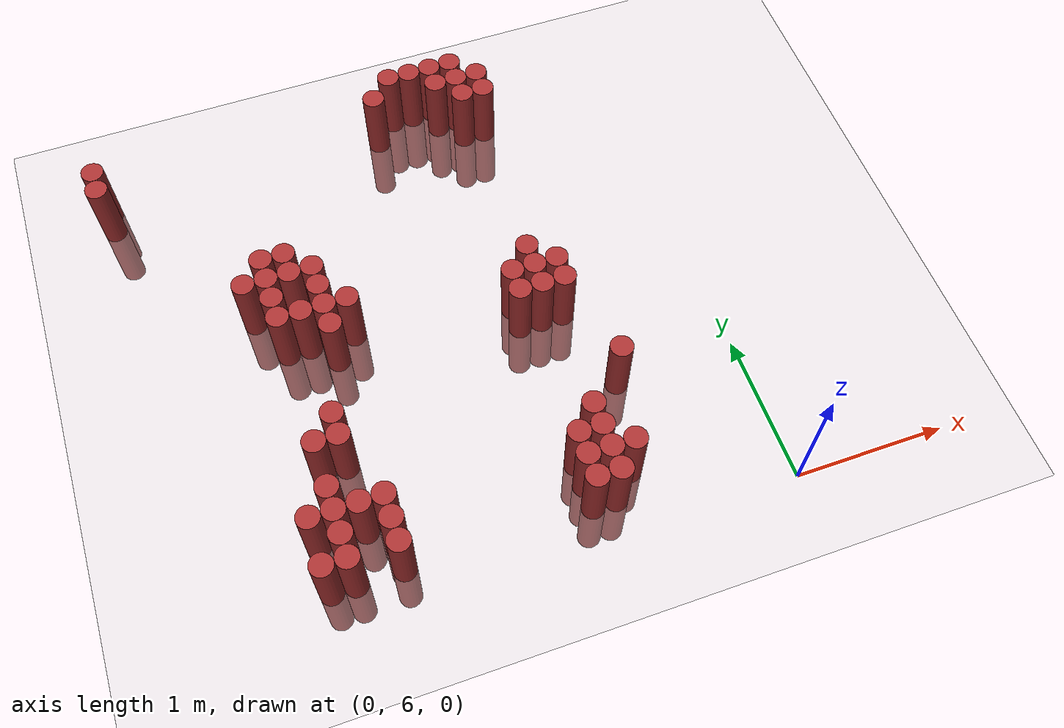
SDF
<sdf version="1.6">
 <world name="default">
  <model name="ground_plane">
   <static>1</static>
   <link name="link">
    <collision name="collision">
     <geometry><plane><normal>0 0 1</normal><size>100 100</size></plane></geometry>
     <surface><friction><ode><mu>100</mu><mu2>50</mu2></ode></friction></surface>
    </collision>
    <visual name="visual">
     <cast_shadows>0</cast_shadows>
     <geometry><plane><normal>0 0 1</normal><size>100 100</size></plane></geometry>
     <material>
      <script><uri>file://media/materials/scripts/gazebo.material</uri><name>Gazebo/Grey</name></script>
     </material>
    </visual>
   </link>
  </model>
  <model name="unit_cylinder_174">
   <static>1</static>
   <pose>-3.675000 9.225000 0.000000 0.000000 0.000000 0.000000</pose>
   <link name="link">
    <inertial>
     <mass>1</mass>
     <inertia><ixx>0.145833</ixx><ixy>0</ixy><ixz>0</ixz><iyy>0.145833</iyy><iyz>0</iyz><izz>0.125</izz></inertia>
    </inertial>
    <collision name="collision">
     <geometry><cylinder><radius>0.075000</radius><length>1</length></cylinder></geometry>
    </collision>
    <visual name="visual">
     <geometry><cylinder><radius>0.075000</radius><length>1</length></cylinder></geometry>
     <material>
      <ambient>0.648000 0.192000 0.192000 1</ambient>
      <diffuse>0.648000 0.192000 0.192000 1</diffuse>
     </material>
     <material>
      <script><name>Gazebo/Grey</name><uri>file://media/materials/scripts/gazebo.material</uri></script>
     </material>
    </visual>
   </link>
  </model>
  <model name="unit_cylinder_175">
   <static>1</static>
   <pose>-3.675000 9.375000 0.000000 0.000000 0.000000 0.000000</pose>
   <link name="link">
    <inertial>
     <mass>1</mass>
     <inertia><ixx>0.145833</ixx><ixy>0</ixy><ixz>0</ixz><iyy>0.145833</iyy><iyz>0</iyz><izz>0.125</izz></inertia>
    </inertial>
    <collision name="collision">
     <geometry><cylinder><radius>0.075000</radius><length>1</length></cylinder></geometry>
    </collision>
    <visual name="visual">
     <geometry><cylinder><radius>0.075000</radius><length>1</length></cylinder></geometry>
     <material>
      <ambient>0.648000 0.192000 0.192000 1</ambient>
      <diffuse>0.648000 0.192000 0.192000 1</diffuse>
     </material>
     <material>
      <script><name>Gazebo/Grey</name><uri>file://media/materials/scripts/gazebo.material</uri></script>
     </material>
    </visual>
   </link>
  </model>
  <model name="unit_cylinder_184">
   <static>1</static>
   <pose>-2.925000 6.225000 0.000000 0.000000 0.000000 0.000000</pose>
   <link name="link">
    <inertial>
     <mass>1</mass>
     <inertia><ixx>0.145833</ixx><ixy>0</ixy><ixz>0</ixz><iyy>0.145833</iyy><iyz>0</iyz><izz>0.125</izz></inertia>
    </inertial>
    <collision name="collision">
     <geometry><cylinder><radius>0.075000</radius><length>1</length></cylinder></geometry>
    </collision>
    <visual name="visual">
     <geometry><cylinder><radius>0.075000</radius><length>1</length></cylinder></geometry>
     <material>
      <ambient>0.648000 0.192000 0.192000 1</ambient>
      <diffuse>0.648000 0.192000 0.192000 1</diffuse>
     </material>
     <material>
      <script><name>Gazebo/Grey</name><uri>file://media/materials/scripts/gazebo.material</uri></script>
     </material>
    </visual>
   </link>
  </model>
  <model name="unit_cylinder_185">
   <static>1</static>
   <pose>-2.925000 6.525000 0.000000 0.000000 0.000000 0.000000</pose>
   <link name="link">
    <inertial>
     <mass>1</mass>
     <inertia><ixx>0.145833</ixx><ixy>0</ixy><ixz>0</ixz><iyy>0.145833</iyy><iyz>0</iyz><izz>0.125</izz></inertia>
    </inertial>
    <collision name="collision">
     <geometry><cylinder><radius>0.075000</radius><length>1</length></cylinder></geometry>
    </collision>
    <visual name="visual">
     <geometry><cylinder><radius>0.075000</radius><length>1</length></cylinder></geometry>
     <material>
      <ambient>0.648000 0.192000 0.192000 1</ambient>
      <diffuse>0.648000 0.192000 0.192000 1</diffuse>
     </material>
     <material>
      <script><name>Gazebo/Grey</name><uri>file://media/materials/scripts/gazebo.material</uri></script>
     </material>
    </visual>
   </link>
  </model>
  <model name="unit_cylinder_186">
   <static>1</static>
   <pose>-2.925000 8.175000 0.000000 0.000000 0.000000 0.000000</pose>
   <link name="link">
    <inertial>
     <mass>1</mass>
     <inertia><ixx>0.145833</ixx><ixy>0</ixy><ixz>0</ixz><iyy>0.145833</iyy><iyz>0</iyz><izz>0.125</izz></inertia>
    </inertial>
    <collision name="collision">
     <geometry><cylinder><radius>0.075000</radius><length>1</length></cylinder></geometry>
    </collision>
    <visual name="visual">
     <geometry><cylinder><radius>0.075000</radius><length>1</length></cylinder></geometry>
     <material>
      <ambient>0.648000 0.192000 0.192000 1</ambient>
      <diffuse>0.648000 0.192000 0.192000 1</diffuse>
     </material>
     <material>
      <script><name>Gazebo/Grey</name><uri>file://media/materials/scripts/gazebo.material</uri></script>
     </material>
    </visual>
   </link>
  </model>
  <model name="unit_cylinder_190">
   <static>1</static>
   <pose>-2.775000 6.225000 0.000000 0.000000 0.000000 0.000000</pose>
   <link name="link">
    <inertial>
     <mass>1</mass>
     <inertia><ixx>0.145833</ixx><ixy>0</ixy><ixz>0</ixz><iyy>0.145833</iyy><iyz>0</iyz><izz>0.125</izz></inertia>
    </inertial>
    <collision name="collision">
     <geometry><cylinder><radius>0.075000</radius><length>1</length></cylinder></geometry>
    </collision>
    <visual name="visual">
     <geometry><cylinder><radius>0.075000</radius><length>1</length></cylinder></geometry>
     <material>
      <ambient>0.648000 0.192000 0.192000 1</ambient>
      <diffuse>0.648000 0.192000 0.192000 1</diffuse>
     </material>
     <material>
      <script><name>Gazebo/Grey</name><uri>file://media/materials/scripts/gazebo.material</uri></script>
     </material>
    </visual>
   </link>
  </model>
  <model name="unit_cylinder_191">
   <static>1</static>
   <pose>-2.775000 6.375000 0.000000 0.000000 0.000000 0.000000</pose>
   <link name="link">
    <inertial>
     <mass>1</mass>
     <inertia><ixx>0.145833</ixx><ixy>0</ixy><ixz>0</ixz><iyy>0.145833</iyy><iyz>0</iyz><izz>0.125</izz></inertia>
    </inertial>
    <collision name="collision">
     <geometry><cylinder><radius>0.075000</radius><length>1</length></cylinder></geometry>
    </collision>
    <visual name="visual">
     <geometry><cylinder><radius>0.075000</radius><length>1</length></cylinder></geometry>
     <material>
      <ambient>0.648000 0.192000 0.192000 1</ambient>
      <diffuse>0.648000 0.192000 0.192000 1</diffuse>
     </material>
     <material>
      <script><name>Gazebo/Grey</name><uri>file://media/materials/scripts/gazebo.material</uri></script>
     </material>
    </visual>
   </link>
  </model>
  <model name="unit_cylinder_192">
   <static>1</static>
   <pose>-2.775000 6.525000 0.000000 0.000000 0.000000 0.000000</pose>
   <link name="link">
    <inertial>
     <mass>1</mass>
     <inertia><ixx>0.145833</ixx><ixy>0</ixy><ixz>0</ixz><iyy>0.145833</iyy><iyz>0</iyz><izz>0.125</izz></inertia>
    </inertial>
    <collision name="collision">
     <geometry><cylinder><radius>0.075000</radius><length>1</length></cylinder></geometry>
    </collision>
    <visual name="visual">
     <geometry><cylinder><radius>0.075000</radius><length>1</length></cylinder></geometry>
     <material>
      <ambient>0.648000 0.192000 0.192000 1</ambient>
      <diffuse>0.648000 0.192000 0.192000 1</diffuse>
     </material>
     <material>
      <script><name>Gazebo/Grey</name><uri>file://media/materials/scripts/gazebo.material</uri></script>
     </material>
    </visual>
   </link>
  </model>
  <model name="unit_cylinder_193">
   <static>1</static>
   <pose>-2.775000 6.675000 0.000000 0.000000 0.000000 0.000000</pose>
   <link name="link">
    <inertial>
     <mass>1</mass>
     <inertia><ixx>0.145833</ixx><ixy>0</ixy><ixz>0</ixz><iyy>0.145833</iyy><iyz>0</iyz><izz>0.125</izz></inertia>
    </inertial>
    <collision name="collision">
     <geometry><cylinder><radius>0.075000</radius><length>1</length></cylinder></geometry>
    </collision>
    <visual name="visual">
     <geometry><cylinder><radius>0.075000</radius><length>1</length></cylinder></geometry>
     <material>
      <ambient>0.648000 0.192000 0.192000 1</ambient>
      <diffuse>0.648000 0.192000 0.192000 1</diffuse>
     </material>
     <material>
      <script><name>Gazebo/Grey</name><uri>file://media/materials/scripts/gazebo.material</uri></script>
     </material>
    </visual>
   </link>
  </model>
  <model name="unit_cylinder_194">
   <static>1</static>
   <pose>-2.775000 6.975000 0.000000 0.000000 0.000000 0.000000</pose>
   <link name="link">
    <inertial>
     <mass>1</mass>
     <inertia><ixx>0.145833</ixx><ixy>0</ixy><ixz>0</ixz><iyy>0.145833</iyy><iyz>0</iyz><izz>0.125</izz></inertia>
    </inertial>
    <collision name="collision">
     <geometry><cylinder><radius>0.075000</radius><length>1</length></cylinder></geometry>
    </collision>
    <visual name="visual">
     <geometry><cylinder><radius>0.075000</radius><length>1</length></cylinder></geometry>
     <material>
      <ambient>0.648000 0.192000 0.192000 1</ambient>
      <diffuse>0.648000 0.192000 0.192000 1</diffuse>
     </material>
     <material>
      <script><name>Gazebo/Grey</name><uri>file://media/materials/scripts/gazebo.material</uri></script>
     </material>
    </visual>
   </link>
  </model>
  <model name="unit_cylinder_195">
   <static>1</static>
   <pose>-2.775000 7.875000 0.000000 0.000000 0.000000 0.000000</pose>
   <link name="link">
    <inertial>
     <mass>1</mass>
     <inertia><ixx>0.145833</ixx><ixy>0</ixy><ixz>0</ixz><iyy>0.145833</iyy><iyz>0</iyz><izz>0.125</izz></inertia>
    </inertial>
    <collision name="collision">
     <geometry><cylinder><radius>0.075000</radius><length>1</length></cylinder></geometry>
    </collision>
    <visual name="visual">
     <geometry><cylinder><radius>0.075000</radius><length>1</length></cylinder></geometry>
     <material>
      <ambient>0.648000 0.192000 0.192000 1</ambient>
      <diffuse>0.648000 0.192000 0.192000 1</diffuse>
     </material>
     <material>
      <script><name>Gazebo/Grey</name><uri>file://media/materials/scripts/gazebo.material</uri></script>
     </material>
    </visual>
   </link>
  </model>
  <model name="unit_cylinder_196">
   <static>1</static>
   <pose>-2.775000 8.025000 0.000000 0.000000 0.000000 0.000000</pose>
   <link name="link">
    <inertial>
     <mass>1</mass>
     <inertia><ixx>0.145833</ixx><ixy>0</ixy><ixz>0</ixz><iyy>0.145833</iyy><iyz>0</iyz><izz>0.125</izz></inertia>
    </inertial>
    <collision name="collision">
     <geometry><cylinder><radius>0.075000</radius><length>1</length></cylinder></geometry>
    </collision>
    <visual name="visual">
     <geometry><cylinder><radius>0.075000</radius><length>1</length></cylinder></geometry>
     <material>
      <ambient>0.648000 0.192000 0.192000 1</ambient>
      <diffuse>0.648000 0.192000 0.192000 1</diffuse>
     </material>
     <material>
      <script><name>Gazebo/Grey</name><uri>file://media/materials/scripts/gazebo.material</uri></script>
     </material>
    </visual>
   </link>
  </model>
  <model name="unit_cylinder_197">
   <static>1</static>
   <pose>-2.775000 8.175000 0.000000 0.000000 0.000000 0.000000</pose>
   <link name="link">
    <inertial>
     <mass>1</mass>
     <inertia><ixx>0.145833</ixx><ixy>0</ixy><ixz>0</ixz><iyy>0.145833</iyy><iyz>0</iyz><izz>0.125</izz></inertia>
    </inertial>
    <collision name="collision">
     <geometry><cylinder><radius>0.075000</radius><length>1</length></cylinder></geometry>
    </collision>
    <visual name="visual">
     <geometry><cylinder><radius>0.075000</radius><length>1</length></cylinder></geometry>
     <material>
      <ambient>0.648000 0.192000 0.192000 1</ambient>
      <diffuse>0.648000 0.192000 0.192000 1</diffuse>
     </material>
     <material>
      <script><name>Gazebo/Grey</name><uri>file://media/materials/scripts/gazebo.material</uri></script>
     </material>
    </visual>
   </link>
  </model>
  <model name="unit_cylinder_198">
   <static>1</static>
   <pose>-2.775000 8.325000 0.000000 0.000000 0.000000 0.000000</pose>
   <link name="link">
    <inertial>
     <mass>1</mass>
     <inertia><ixx>0.145833</ixx><ixy>0</ixy><ixz>0</ixz><iyy>0.145833</iyy><iyz>0</iyz><izz>0.125</izz></inertia>
    </inertial>
    <collision name="collision">
     <geometry><cylinder><radius>0.075000</radius><length>1</length></cylinder></geometry>
    </collision>
    <visual name="visual">
     <geometry><cylinder><radius>0.075000</radius><length>1</length></cylinder></geometry>
     <material>
      <ambient>0.648000 0.192000 0.192000 1</ambient>
      <diffuse>0.648000 0.192000 0.192000 1</diffuse>
     </material>
     <material>
      <script><name>Gazebo/Grey</name><uri>file://media/materials/scripts/gazebo.material</uri></script>
     </material>
    </visual>
   </link>
  </model>
  <model name="unit_cylinder_203">
   <static>1</static>
   <pose>-2.625000 6.525000 0.000000 0.000000 0.000000 0.000000</pose>
   <link name="link">
    <inertial>
     <mass>1</mass>
     <inertia><ixx>0.145833</ixx><ixy>0</ixy><ixz>0</ixz><iyy>0.145833</iyy><iyz>0</iyz><izz>0.125</izz></inertia>
    </inertial>
    <collision name="collision">
     <geometry><cylinder><radius>0.075000</radius><length>1</length></cylinder></geometry>
    </collision>
    <visual name="visual">
     <geometry><cylinder><radius>0.075000</radius><length>1</length></cylinder></geometry>
     <material>
      <ambient>0.648000 0.192000 0.192000 1</ambient>
      <diffuse>0.648000 0.192000 0.192000 1</diffuse>
     </material>
     <material>
      <script><name>Gazebo/Grey</name><uri>file://media/materials/scripts/gazebo.material</uri></script>
     </material>
    </visual>
   </link>
  </model>
  <model name="unit_cylinder_204">
   <static>1</static>
   <pose>-2.625000 6.975000 0.000000 0.000000 0.000000 0.000000</pose>
   <link name="link">
    <inertial>
     <mass>1</mass>
     <inertia><ixx>0.145833</ixx><ixy>0</ixy><ixz>0</ixz><iyy>0.145833</iyy><iyz>0</iyz><izz>0.125</izz></inertia>
    </inertial>
    <collision name="collision">
     <geometry><cylinder><radius>0.075000</radius><length>1</length></cylinder></geometry>
    </collision>
    <visual name="visual">
     <geometry><cylinder><radius>0.075000</radius><length>1</length></cylinder></geometry>
     <material>
      <ambient>0.648000 0.192000 0.192000 1</ambient>
      <diffuse>0.648000 0.192000 0.192000 1</diffuse>
     </material>
     <material>
      <script><name>Gazebo/Grey</name><uri>file://media/materials/scripts/gazebo.material</uri></script>
     </material>
    </visual>
   </link>
  </model>
  <model name="unit_cylinder_205">
   <static>1</static>
   <pose>-2.625000 7.125000 0.000000 0.000000 0.000000 0.000000</pose>
   <link name="link">
    <inertial>
     <mass>1</mass>
     <inertia><ixx>0.145833</ixx><ixy>0</ixy><ixz>0</ixz><iyy>0.145833</iyy><iyz>0</iyz><izz>0.125</izz></inertia>
    </inertial>
    <collision name="collision">
     <geometry><cylinder><radius>0.075000</radius><length>1</length></cylinder></geometry>
    </collision>
    <visual name="visual">
     <geometry><cylinder><radius>0.075000</radius><length>1</length></cylinder></geometry>
     <material>
      <ambient>0.648000 0.192000 0.192000 1</ambient>
      <diffuse>0.648000 0.192000 0.192000 1</diffuse>
     </material>
     <material>
      <script><name>Gazebo/Grey</name><uri>file://media/materials/scripts/gazebo.material</uri></script>
     </material>
    </visual>
   </link>
  </model>
  <model name="unit_cylinder_206">
   <static>1</static>
   <pose>-2.625000 7.875000 0.000000 0.000000 0.000000 0.000000</pose>
   <link name="link">
    <inertial>
     <mass>1</mass>
     <inertia><ixx>0.145833</ixx><ixy>0</ixy><ixz>0</ixz><iyy>0.145833</iyy><iyz>0</iyz><izz>0.125</izz></inertia>
    </inertial>
    <collision name="collision">
     <geometry><cylinder><radius>0.075000</radius><length>1</length></cylinder></geometry>
    </collision>
    <visual name="visual">
     <geometry><cylinder><radius>0.075000</radius><length>1</length></cylinder></geometry>
     <material>
      <ambient>0.648000 0.192000 0.192000 1</ambient>
      <diffuse>0.648000 0.192000 0.192000 1</diffuse>
     </material>
     <material>
      <script><name>Gazebo/Grey</name><uri>file://media/materials/scripts/gazebo.material</uri></script>
     </material>
    </visual>
   </link>
  </model>
  <model name="unit_cylinder_207">
   <static>1</static>
   <pose>-2.625000 8.175000 0.000000 0.000000 0.000000 0.000000</pose>
   <link name="link">
    <inertial>
     <mass>1</mass>
     <inertia><ixx>0.145833</ixx><ixy>0</ixy><ixz>0</ixz><iyy>0.145833</iyy><iyz>0</iyz><izz>0.125</izz></inertia>
    </inertial>
    <collision name="collision">
     <geometry><cylinder><radius>0.075000</radius><length>1</length></cylinder></geometry>
    </collision>
    <visual name="visual">
     <geometry><cylinder><radius>0.075000</radius><length>1</length></cylinder></geometry>
     <material>
      <ambient>0.648000 0.192000 0.192000 1</ambient>
      <diffuse>0.648000 0.192000 0.192000 1</diffuse>
     </material>
     <material>
      <script><name>Gazebo/Grey</name><uri>file://media/materials/scripts/gazebo.material</uri></script>
     </material>
    </visual>
   </link>
  </model>
  <model name="unit_cylinder_208">
   <static>1</static>
   <pose>-2.625000 8.325000 0.000000 0.000000 0.000000 0.000000</pose>
   <link name="link">
    <inertial>
     <mass>1</mass>
     <inertia><ixx>0.145833</ixx><ixy>0</ixy><ixz>0</ixz><iyy>0.145833</iyy><iyz>0</iyz><izz>0.125</izz></inertia>
    </inertial>
    <collision name="collision">
     <geometry><cylinder><radius>0.075000</radius><length>1</length></cylinder></geometry>
    </collision>
    <visual name="visual">
     <geometry><cylinder><radius>0.075000</radius><length>1</length></cylinder></geometry>
     <material>
      <ambient>0.648000 0.192000 0.192000 1</ambient>
      <diffuse>0.648000 0.192000 0.192000 1</diffuse>
     </material>
     <material>
      <script><name>Gazebo/Grey</name><uri>file://media/materials/scripts/gazebo.material</uri></script>
     </material>
    </visual>
   </link>
  </model>
  <model name="unit_cylinder_213">
   <static>1</static>
   <pose>-2.475000 6.225000 0.000000 0.000000 0.000000 0.000000</pose>
   <link name="link">
    <inertial>
     <mass>1</mass>
     <inertia><ixx>0.145833</ixx><ixy>0</ixy><ixz>0</ixz><iyy>0.145833</iyy><iyz>0</iyz><izz>0.125</izz></inertia>
    </inertial>
    <collision name="collision">
     <geometry><cylinder><radius>0.075000</radius><length>1</length></cylinder></geometry>
    </collision>
    <visual name="visual">
     <geometry><cylinder><radius>0.075000</radius><length>1</length></cylinder></geometry>
     <material>
      <ambient>0.648000 0.192000 0.192000 1</ambient>
      <diffuse>0.648000 0.192000 0.192000 1</diffuse>
     </material>
     <material>
      <script><name>Gazebo/Grey</name><uri>file://media/materials/scripts/gazebo.material</uri></script>
     </material>
    </visual>
   </link>
  </model>
  <model name="unit_cylinder_214">
   <static>1</static>
   <pose>-2.475000 6.375000 0.000000 0.000000 0.000000 0.000000</pose>
   <link name="link">
    <inertial>
     <mass>1</mass>
     <inertia><ixx>0.145833</ixx><ixy>0</ixy><ixz>0</ixz><iyy>0.145833</iyy><iyz>0</iyz><izz>0.125</izz></inertia>
    </inertial>
    <collision name="collision">
     <geometry><cylinder><radius>0.075000</radius><length>1</length></cylinder></geometry>
    </collision>
    <visual name="visual">
     <geometry><cylinder><radius>0.075000</radius><length>1</length></cylinder></geometry>
     <material>
      <ambient>0.648000 0.192000 0.192000 1</ambient>
      <diffuse>0.648000 0.192000 0.192000 1</diffuse>
     </material>
     <material>
      <script><name>Gazebo/Grey</name><uri>file://media/materials/scripts/gazebo.material</uri></script>
     </material>
    </visual>
   </link>
  </model>
  <model name="unit_cylinder_215">
   <static>1</static>
   <pose>-2.475000 6.525000 0.000000 0.000000 0.000000 0.000000</pose>
   <link name="link">
    <inertial>
     <mass>1</mass>
     <inertia><ixx>0.145833</ixx><ixy>0</ixy><ixz>0</ixz><iyy>0.145833</iyy><iyz>0</iyz><izz>0.125</izz></inertia>
    </inertial>
    <collision name="collision">
     <geometry><cylinder><radius>0.075000</radius><length>1</length></cylinder></geometry>
    </collision>
    <visual name="visual">
     <geometry><cylinder><radius>0.075000</radius><length>1</length></cylinder></geometry>
     <material>
      <ambient>0.648000 0.192000 0.192000 1</ambient>
      <diffuse>0.648000 0.192000 0.192000 1</diffuse>
     </material>
     <material>
      <script><name>Gazebo/Grey</name><uri>file://media/materials/scripts/gazebo.material</uri></script>
     </material>
    </visual>
   </link>
  </model>
  <model name="unit_cylinder_216">
   <static>1</static>
   <pose>-2.475000 7.725000 0.000000 0.000000 0.000000 0.000000</pose>
   <link name="link">
    <inertial>
     <mass>1</mass>
     <inertia><ixx>0.145833</ixx><ixy>0</ixy><ixz>0</ixz><iyy>0.145833</iyy><iyz>0</iyz><izz>0.125</izz></inertia>
    </inertial>
    <collision name="collision">
     <geometry><cylinder><radius>0.075000</radius><length>1</length></cylinder></geometry>
    </collision>
    <visual name="visual">
     <geometry><cylinder><radius>0.075000</radius><length>1</length></cylinder></geometry>
     <material>
      <ambient>0.648000 0.192000 0.192000 1</ambient>
      <diffuse>0.648000 0.192000 0.192000 1</diffuse>
     </material>
     <material>
      <script><name>Gazebo/Grey</name><uri>file://media/materials/scripts/gazebo.material</uri></script>
     </material>
    </visual>
   </link>
  </model>
  <model name="unit_cylinder_217">
   <static>1</static>
   <pose>-2.475000 7.875000 0.000000 0.000000 0.000000 0.000000</pose>
   <link name="link">
    <inertial>
     <mass>1</mass>
     <inertia><ixx>0.145833</ixx><ixy>0</ixy><ixz>0</ixz><iyy>0.145833</iyy><iyz>0</iyz><izz>0.125</izz></inertia>
    </inertial>
    <collision name="collision">
     <geometry><cylinder><radius>0.075000</radius><length>1</length></cylinder></geometry>
    </collision>
    <visual name="visual">
     <geometry><cylinder><radius>0.075000</radius><length>1</length></cylinder></geometry>
     <material>
      <ambient>0.648000 0.192000 0.192000 1</ambient>
      <diffuse>0.648000 0.192000 0.192000 1</diffuse>
     </material>
     <material>
      <script><name>Gazebo/Grey</name><uri>file://media/materials/scripts/gazebo.material</uri></script>
     </material>
    </visual>
   </link>
  </model>
  <model name="unit_cylinder_218">
   <static>1</static>
   <pose>-2.475000 8.025000 0.000000 0.000000 0.000000 0.000000</pose>
   <link name="link">
    <inertial>
     <mass>1</mass>
     <inertia><ixx>0.145833</ixx><ixy>0</ixy><ixz>0</ixz><iyy>0.145833</iyy><iyz>0</iyz><izz>0.125</izz></inertia>
    </inertial>
    <collision name="collision">
     <geometry><cylinder><radius>0.075000</radius><length>1</length></cylinder></geometry>
    </collision>
    <visual name="visual">
     <geometry><cylinder><radius>0.075000</radius><length>1</length></cylinder></geometry>
     <material>
      <ambient>0.648000 0.192000 0.192000 1</ambient>
      <diffuse>0.648000 0.192000 0.192000 1</diffuse>
     </material>
     <material>
      <script><name>Gazebo/Grey</name><uri>file://media/materials/scripts/gazebo.material</uri></script>
     </material>
    </visual>
   </link>
  </model>
  <model name="unit_cylinder_219">
   <static>1</static>
   <pose>-2.475000 8.175000 0.000000 0.000000 0.000000 0.000000</pose>
   <link name="link">
    <inertial>
     <mass>1</mass>
     <inertia><ixx>0.145833</ixx><ixy>0</ixy><ixz>0</ixz><iyy>0.145833</iyy><iyz>0</iyz><izz>0.125</izz></inertia>
    </inertial>
    <collision name="collision">
     <geometry><cylinder><radius>0.075000</radius><length>1</length></cylinder></geometry>
    </collision>
    <visual name="visual">
     <geometry><cylinder><radius>0.075000</radius><length>1</length></cylinder></geometry>
     <material>
      <ambient>0.648000 0.192000 0.192000 1</ambient>
      <diffuse>0.648000 0.192000 0.192000 1</diffuse>
     </material>
     <material>
      <script><name>Gazebo/Grey</name><uri>file://media/materials/scripts/gazebo.material</uri></script>
     </material>
    </visual>
   </link>
  </model>
  <model name="unit_cylinder_222">
   <static>1</static>
   <pose>-2.325000 7.875000 0.000000 0.000000 0.000000 0.000000</pose>
   <link name="link">
    <inertial>
     <mass>1</mass>
     <inertia><ixx>0.145833</ixx><ixy>0</ixy><ixz>0</ixz><iyy>0.145833</iyy><iyz>0</iyz><izz>0.125</izz></inertia>
    </inertial>
    <collision name="collision">
     <geometry><cylinder><radius>0.075000</radius><length>1</length></cylinder></geometry>
    </collision>
    <visual name="visual">
     <geometry><cylinder><radius>0.075000</radius><length>1</length></cylinder></geometry>
     <material>
      <ambient>0.648000 0.192000 0.192000 1</ambient>
      <diffuse>0.648000 0.192000 0.192000 1</diffuse>
     </material>
     <material>
      <script><name>Gazebo/Grey</name><uri>file://media/materials/scripts/gazebo.material</uri></script>
     </material>
    </visual>
   </link>
  </model>
  <model name="unit_cylinder_223">
   <static>1</static>
   <pose>-1.725000 9.375000 0.000000 0.000000 0.000000 0.000000</pose>
   <link name="link">
    <inertial>
     <mass>1</mass>
     <inertia><ixx>0.145833</ixx><ixy>0</ixy><ixz>0</ixz><iyy>0.145833</iyy><iyz>0</iyz><izz>0.125</izz></inertia>
    </inertial>
    <collision name="collision">
     <geometry><cylinder><radius>0.075000</radius><length>1</length></cylinder></geometry>
    </collision>
    <visual name="visual">
     <geometry><cylinder><radius>0.075000</radius><length>1</length></cylinder></geometry>
     <material>
      <ambient>0.648000 0.192000 0.192000 1</ambient>
      <diffuse>0.648000 0.192000 0.192000 1</diffuse>
     </material>
     <material>
      <script><name>Gazebo/Grey</name><uri>file://media/materials/scripts/gazebo.material</uri></script>
     </material>
    </visual>
   </link>
  </model>
  <model name="unit_cylinder_224">
   <static>1</static>
   <pose>-1.575000 9.525000 0.000000 0.000000 0.000000 0.000000</pose>
   <link name="link">
    <inertial>
     <mass>1</mass>
     <inertia><ixx>0.145833</ixx><ixy>0</ixy><ixz>0</ixz><iyy>0.145833</iyy><iyz>0</iyz><izz>0.125</izz></inertia>
    </inertial>
    <collision name="collision">
     <geometry><cylinder><radius>0.075000</radius><length>1</length></cylinder></geometry>
    </collision>
    <visual name="visual">
     <geometry><cylinder><radius>0.075000</radius><length>1</length></cylinder></geometry>
     <material>
      <ambient>0.648000 0.192000 0.192000 1</ambient>
      <diffuse>0.648000 0.192000 0.192000 1</diffuse>
     </material>
     <material>
      <script><name>Gazebo/Grey</name><uri>file://media/materials/scripts/gazebo.material</uri></script>
     </material>
    </visual>
   </link>
  </model>
  <model name="unit_cylinder_227">
   <static>1</static>
   <pose>-1.425000 9.525000 0.000000 0.000000 0.000000 0.000000</pose>
   <link name="link">
    <inertial>
     <mass>1</mass>
     <inertia><ixx>0.145833</ixx><ixy>0</ixy><ixz>0</ixz><iyy>0.145833</iyy><iyz>0</iyz><izz>0.125</izz></inertia>
    </inertial>
    <collision name="collision">
     <geometry><cylinder><radius>0.075000</radius><length>1</length></cylinder></geometry>
    </collision>
    <visual name="visual">
     <geometry><cylinder><radius>0.075000</radius><length>1</length></cylinder></geometry>
     <material>
      <ambient>0.648000 0.192000 0.192000 1</ambient>
      <diffuse>0.648000 0.192000 0.192000 1</diffuse>
     </material>
     <material>
      <script><name>Gazebo/Grey</name><uri>file://media/materials/scripts/gazebo.material</uri></script>
     </material>
    </visual>
   </link>
  </model>
  <model name="unit_cylinder_228">
   <static>1</static>
   <pose>-1.275000 6.225000 0.000000 0.000000 0.000000 0.000000</pose>
   <link name="link">
    <inertial>
     <mass>1</mass>
     <inertia><ixx>0.145833</ixx><ixy>0</ixy><ixz>0</ixz><iyy>0.145833</iyy><iyz>0</iyz><izz>0.125</izz></inertia>
    </inertial>
    <collision name="collision">
     <geometry><cylinder><radius>0.075000</radius><length>1</length></cylinder></geometry>
    </collision>
    <visual name="visual">
     <geometry><cylinder><radius>0.075000</radius><length>1</length></cylinder></geometry>
     <material>
      <ambient>0.648000 0.192000 0.192000 1</ambient>
      <diffuse>0.648000 0.192000 0.192000 1</diffuse>
     </material>
     <material>
      <script><name>Gazebo/Grey</name><uri>file://media/materials/scripts/gazebo.material</uri></script>
     </material>
    </visual>
   </link>
  </model>
  <model name="unit_cylinder_229">
   <static>1</static>
   <pose>-1.275000 6.375000 0.000000 0.000000 0.000000 0.000000</pose>
   <link name="link">
    <inertial>
     <mass>1</mass>
     <inertia><ixx>0.145833</ixx><ixy>0</ixy><ixz>0</ixz><iyy>0.145833</iyy><iyz>0</iyz><izz>0.125</izz></inertia>
    </inertial>
    <collision name="collision">
     <geometry><cylinder><radius>0.075000</radius><length>1</length></cylinder></geometry>
    </collision>
    <visual name="visual">
     <geometry><cylinder><radius>0.075000</radius><length>1</length></cylinder></geometry>
     <material>
      <ambient>0.648000 0.192000 0.192000 1</ambient>
      <diffuse>0.648000 0.192000 0.192000 1</diffuse>
     </material>
     <material>
      <script><name>Gazebo/Grey</name><uri>file://media/materials/scripts/gazebo.material</uri></script>
     </material>
    </visual>
   </link>
  </model>
  <model name="unit_cylinder_230">
   <static>1</static>
   <pose>-1.275000 6.525000 0.000000 0.000000 0.000000 0.000000</pose>
   <link name="link">
    <inertial>
     <mass>1</mass>
     <inertia><ixx>0.145833</ixx><ixy>0</ixy><ixz>0</ixz><iyy>0.145833</iyy><iyz>0</iyz><izz>0.125</izz></inertia>
    </inertial>
    <collision name="collision">
     <geometry><cylinder><radius>0.075000</radius><length>1</length></cylinder></geometry>
    </collision>
    <visual name="visual">
     <geometry><cylinder><radius>0.075000</radius><length>1</length></cylinder></geometry>
     <material>
      <ambient>0.648000 0.192000 0.192000 1</ambient>
      <diffuse>0.648000 0.192000 0.192000 1</diffuse>
     </material>
     <material>
      <script><name>Gazebo/Grey</name><uri>file://media/materials/scripts/gazebo.material</uri></script>
     </material>
    </visual>
   </link>
  </model>
  <model name="unit_cylinder_231">
   <static>1</static>
   <pose>-1.275000 7.575000 0.000000 0.000000 0.000000 0.000000</pose>
   <link name="link">
    <inertial>
     <mass>1</mass>
     <inertia><ixx>0.145833</ixx><ixy>0</ixy><ixz>0</ixz><iyy>0.145833</iyy><iyz>0</iyz><izz>0.125</izz></inertia>
    </inertial>
    <collision name="collision">
     <geometry><cylinder><radius>0.075000</radius><length>1</length></cylinder></geometry>
    </collision>
    <visual name="visual">
     <geometry><cylinder><radius>0.075000</radius><length>1</length></cylinder></geometry>
     <material>
      <ambient>0.648000 0.192000 0.192000 1</ambient>
      <diffuse>0.648000 0.192000 0.192000 1</diffuse>
     </material>
     <material>
      <script><name>Gazebo/Grey</name><uri>file://media/materials/scripts/gazebo.material</uri></script>
     </material>
    </visual>
   </link>
  </model>
  <model name="unit_cylinder_232">
   <static>1</static>
   <pose>-1.275000 7.725000 0.000000 0.000000 0.000000 0.000000</pose>
   <link name="link">
    <inertial>
     <mass>1</mass>
     <inertia><ixx>0.145833</ixx><ixy>0</ixy><ixz>0</ixz><iyy>0.145833</iyy><iyz>0</iyz><izz>0.125</izz></inertia>
    </inertial>
    <collision name="collision">
     <geometry><cylinder><radius>0.075000</radius><length>1</length></cylinder></geometry>
    </collision>
    <visual name="visual">
     <geometry><cylinder><radius>0.075000</radius><length>1</length></cylinder></geometry>
     <material>
      <ambient>0.648000 0.192000 0.192000 1</ambient>
      <diffuse>0.648000 0.192000 0.192000 1</diffuse>
     </material>
     <material>
      <script><name>Gazebo/Grey</name><uri>file://media/materials/scripts/gazebo.material</uri></script>
     </material>
    </visual>
   </link>
  </model>
  <model name="unit_cylinder_233">
   <static>1</static>
   <pose>-1.275000 9.375000 0.000000 0.000000 0.000000 0.000000</pose>
   <link name="link">
    <inertial>
     <mass>1</mass>
     <inertia><ixx>0.145833</ixx><ixy>0</ixy><ixz>0</ixz><iyy>0.145833</iyy><iyz>0</iyz><izz>0.125</izz></inertia>
    </inertial>
    <collision name="collision">
     <geometry><cylinder><radius>0.075000</radius><length>1</length></cylinder></geometry>
    </collision>
    <visual name="visual">
     <geometry><cylinder><radius>0.075000</radius><length>1</length></cylinder></geometry>
     <material>
      <ambient>0.648000 0.192000 0.192000 1</ambient>
      <diffuse>0.648000 0.192000 0.192000 1</diffuse>
     </material>
     <material>
      <script><name>Gazebo/Grey</name><uri>file://media/materials/scripts/gazebo.material</uri></script>
     </material>
    </visual>
   </link>
  </model>
  <model name="unit_cylinder_234">
   <static>1</static>
   <pose>-1.275000 9.525000 0.000000 0.000000 0.000000 0.000000</pose>
   <link name="link">
    <inertial>
     <mass>1</mass>
     <inertia><ixx>0.145833</ixx><ixy>0</ixy><ixz>0</ixz><iyy>0.145833</iyy><iyz>0</iyz><izz>0.125</izz></inertia>
    </inertial>
    <collision name="collision">
     <geometry><cylinder><radius>0.075000</radius><length>1</length></cylinder></geometry>
    </collision>
    <visual name="visual">
     <geometry><cylinder><radius>0.075000</radius><length>1</length></cylinder></geometry>
     <material>
      <ambient>0.648000 0.192000 0.192000 1</ambient>
      <diffuse>0.648000 0.192000 0.192000 1</diffuse>
     </material>
     <material>
      <script><name>Gazebo/Grey</name><uri>file://media/materials/scripts/gazebo.material</uri></script>
     </material>
    </visual>
   </link>
  </model>
  <model name="unit_cylinder_235">
   <static>1</static>
   <pose>-1.125000 6.225000 0.000000 0.000000 0.000000 0.000000</pose>
   <link name="link">
    <inertial>
     <mass>1</mass>
     <inertia><ixx>0.145833</ixx><ixy>0</ixy><ixz>0</ixz><iyy>0.145833</iyy><iyz>0</iyz><izz>0.125</izz></inertia>
    </inertial>
    <collision name="collision">
     <geometry><cylinder><radius>0.075000</radius><length>1</length></cylinder></geometry>
    </collision>
    <visual name="visual">
     <geometry><cylinder><radius>0.075000</radius><length>1</length></cylinder></geometry>
     <material>
      <ambient>0.648000 0.192000 0.192000 1</ambient>
      <diffuse>0.648000 0.192000 0.192000 1</diffuse>
     </material>
     <material>
      <script><name>Gazebo/Grey</name><uri>file://media/materials/scripts/gazebo.material</uri></script>
     </material>
    </visual>
   </link>
  </model>
  <model name="unit_cylinder_236">
   <static>1</static>
   <pose>-1.125000 6.375000 0.000000 0.000000 0.000000 0.000000</pose>
   <link name="link">
    <inertial>
     <mass>1</mass>
     <inertia><ixx>0.145833</ixx><ixy>0</ixy><ixz>0</ixz><iyy>0.145833</iyy><iyz>0</iyz><izz>0.125</izz></inertia>
    </inertial>
    <collision name="collision">
     <geometry><cylinder><radius>0.075000</radius><length>1</length></cylinder></geometry>
    </collision>
    <visual name="visual">
     <geometry><cylinder><radius>0.075000</radius><length>1</length></cylinder></geometry>
     <material>
      <ambient>0.648000 0.192000 0.192000 1</ambient>
      <diffuse>0.648000 0.192000 0.192000 1</diffuse>
     </material>
     <material>
      <script><name>Gazebo/Grey</name><uri>file://media/materials/scripts/gazebo.material</uri></script>
     </material>
    </visual>
   </link>
  </model>
  <model name="unit_cylinder_237">
   <static>1</static>
   <pose>-1.125000 6.525000 0.000000 0.000000 0.000000 0.000000</pose>
   <link name="link">
    <inertial>
     <mass>1</mass>
     <inertia><ixx>0.145833</ixx><ixy>0</ixy><ixz>0</ixz><iyy>0.145833</iyy><iyz>0</iyz><izz>0.125</izz></inertia>
    </inertial>
    <collision name="collision">
     <geometry><cylinder><radius>0.075000</radius><length>1</length></cylinder></geometry>
    </collision>
    <visual name="visual">
     <geometry><cylinder><radius>0.075000</radius><length>1</length></cylinder></geometry>
     <material>
      <ambient>0.648000 0.192000 0.192000 1</ambient>
      <diffuse>0.648000 0.192000 0.192000 1</diffuse>
     </material>
     <material>
      <script><name>Gazebo/Grey</name><uri>file://media/materials/scripts/gazebo.material</uri></script>
     </material>
    </visual>
   </link>
  </model>
  <model name="unit_cylinder_238">
   <static>1</static>
   <pose>-1.125000 6.675000 0.000000 0.000000 0.000000 0.000000</pose>
   <link name="link">
    <inertial>
     <mass>1</mass>
     <inertia><ixx>0.145833</ixx><ixy>0</ixy><ixz>0</ixz><iyy>0.145833</iyy><iyz>0</iyz><izz>0.125</izz></inertia>
    </inertial>
    <collision name="collision">
     <geometry><cylinder><radius>0.075000</radius><length>1</length></cylinder></geometry>
    </collision>
    <visual name="visual">
     <geometry><cylinder><radius>0.075000</radius><length>1</length></cylinder></geometry>
     <material>
      <ambient>0.648000 0.192000 0.192000 1</ambient>
      <diffuse>0.648000 0.192000 0.192000 1</diffuse>
     </material>
     <material>
      <script><name>Gazebo/Grey</name><uri>file://media/materials/scripts/gazebo.material</uri></script>
     </material>
    </visual>
   </link>
  </model>
  <model name="unit_cylinder_239">
   <static>1</static>
   <pose>-1.125000 7.575000 0.000000 0.000000 0.000000 0.000000</pose>
   <link name="link">
    <inertial>
     <mass>1</mass>
     <inertia><ixx>0.145833</ixx><ixy>0</ixy><ixz>0</ixz><iyy>0.145833</iyy><iyz>0</iyz><izz>0.125</izz></inertia>
    </inertial>
    <collision name="collision">
     <geometry><cylinder><radius>0.075000</radius><length>1</length></cylinder></geometry>
    </collision>
    <visual name="visual">
     <geometry><cylinder><radius>0.075000</radius><length>1</length></cylinder></geometry>
     <material>
      <ambient>0.648000 0.192000 0.192000 1</ambient>
      <diffuse>0.648000 0.192000 0.192000 1</diffuse>
     </material>
     <material>
      <script><name>Gazebo/Grey</name><uri>file://media/materials/scripts/gazebo.material</uri></script>
     </material>
    </visual>
   </link>
  </model>
  <model name="unit_cylinder_240">
   <static>1</static>
   <pose>-1.125000 7.725000 0.000000 0.000000 0.000000 0.000000</pose>
   <link name="link">
    <inertial>
     <mass>1</mass>
     <inertia><ixx>0.145833</ixx><ixy>0</ixy><ixz>0</ixz><iyy>0.145833</iyy><iyz>0</iyz><izz>0.125</izz></inertia>
    </inertial>
    <collision name="collision">
     <geometry><cylinder><radius>0.075000</radius><length>1</length></cylinder></geometry>
    </collision>
    <visual name="visual">
     <geometry><cylinder><radius>0.075000</radius><length>1</length></cylinder></geometry>
     <material>
      <ambient>0.648000 0.192000 0.192000 1</ambient>
      <diffuse>0.648000 0.192000 0.192000 1</diffuse>
     </material>
     <material>
      <script><name>Gazebo/Grey</name><uri>file://media/materials/scripts/gazebo.material</uri></script>
     </material>
    </visual>
   </link>
  </model>
  <model name="unit_cylinder_241">
   <static>1</static>
   <pose>-1.125000 7.875000 0.000000 0.000000 0.000000 0.000000</pose>
   <link name="link">
    <inertial>
     <mass>1</mass>
     <inertia><ixx>0.145833</ixx><ixy>0</ixy><ixz>0</ixz><iyy>0.145833</iyy><iyz>0</iyz><izz>0.125</izz></inertia>
    </inertial>
    <collision name="collision">
     <geometry><cylinder><radius>0.075000</radius><length>1</length></cylinder></geometry>
    </collision>
    <visual name="visual">
     <geometry><cylinder><radius>0.075000</radius><length>1</length></cylinder></geometry>
     <material>
      <ambient>0.648000 0.192000 0.192000 1</ambient>
      <diffuse>0.648000 0.192000 0.192000 1</diffuse>
     </material>
     <material>
      <script><name>Gazebo/Grey</name><uri>file://media/materials/scripts/gazebo.material</uri></script>
     </material>
    </visual>
   </link>
  </model>
  <model name="unit_cylinder_242">
   <static>1</static>
   <pose>-1.125000 9.225000 0.000000 0.000000 0.000000 0.000000</pose>
   <link name="link">
    <inertial>
     <mass>1</mass>
     <inertia><ixx>0.145833</ixx><ixy>0</ixy><ixz>0</ixz><iyy>0.145833</iyy><iyz>0</iyz><izz>0.125</izz></inertia>
    </inertial>
    <collision name="collision">
     <geometry><cylinder><radius>0.075000</radius><length>1</length></cylinder></geometry>
    </collision>
    <visual name="visual">
     <geometry><cylinder><radius>0.075000</radius><length>1</length></cylinder></geometry>
     <material>
      <ambient>0.648000 0.192000 0.192000 1</ambient>
      <diffuse>0.648000 0.192000 0.192000 1</diffuse>
     </material>
     <material>
      <script><name>Gazebo/Grey</name><uri>file://media/materials/scripts/gazebo.material</uri></script>
     </material>
    </visual>
   </link>
  </model>
  <model name="unit_cylinder_243">
   <static>1</static>
   <pose>-1.125000 9.375000 0.000000 0.000000 0.000000 0.000000</pose>
   <link name="link">
    <inertial>
     <mass>1</mass>
     <inertia><ixx>0.145833</ixx><ixy>0</ixy><ixz>0</ixz><iyy>0.145833</iyy><iyz>0</iyz><izz>0.125</izz></inertia>
    </inertial>
    <collision name="collision">
     <geometry><cylinder><radius>0.075000</radius><length>1</length></cylinder></geometry>
    </collision>
    <visual name="visual">
     <geometry><cylinder><radius>0.075000</radius><length>1</length></cylinder></geometry>
     <material>
      <ambient>0.648000 0.192000 0.192000 1</ambient>
      <diffuse>0.648000 0.192000 0.192000 1</diffuse>
     </material>
     <material>
      <script><name>Gazebo/Grey</name><uri>file://media/materials/scripts/gazebo.material</uri></script>
     </material>
    </visual>
   </link>
  </model>
  <model name="unit_cylinder_244">
   <static>1</static>
   <pose>-1.125000 9.525000 0.000000 0.000000 0.000000 0.000000</pose>
   <link name="link">
    <inertial>
     <mass>1</mass>
     <inertia><ixx>0.145833</ixx><ixy>0</ixy><ixz>0</ixz><iyy>0.145833</iyy><iyz>0</iyz><izz>0.125</izz></inertia>
    </inertial>
    <collision name="collision">
     <geometry><cylinder><radius>0.075000</radius><length>1</length></cylinder></geometry>
    </collision>
    <visual name="visual">
     <geometry><cylinder><radius>0.075000</radius><length>1</length></cylinder></geometry>
     <material>
      <ambient>0.648000 0.192000 0.192000 1</ambient>
      <diffuse>0.648000 0.192000 0.192000 1</diffuse>
     </material>
     <material>
      <script><name>Gazebo/Grey</name><uri>file://media/materials/scripts/gazebo.material</uri></script>
     </material>
    </visual>
   </link>
  </model>
  <model name="unit_cylinder_246">
   <static>1</static>
   <pose>-0.975000 6.375000 0.000000 0.000000 0.000000 0.000000</pose>
   <link name="link">
    <inertial>
     <mass>1</mass>
     <inertia><ixx>0.145833</ixx><ixy>0</ixy><ixz>0</ixz><iyy>0.145833</iyy><iyz>0</iyz><izz>0.125</izz></inertia>
    </inertial>
    <collision name="collision">
     <geometry><cylinder><radius>0.075000</radius><length>1</length></cylinder></geometry>
    </collision>
    <visual name="visual">
     <geometry><cylinder><radius>0.075000</radius><length>1</length></cylinder></geometry>
     <material>
      <ambient>0.648000 0.192000 0.192000 1</ambient>
      <diffuse>0.648000 0.192000 0.192000 1</diffuse>
     </material>
     <material>
      <script><name>Gazebo/Grey</name><uri>file://media/materials/scripts/gazebo.material</uri></script>
     </material>
    </visual>
   </link>
  </model>
  <model name="unit_cylinder_247">
   <static>1</static>
   <pose>-0.975000 7.575000 0.000000 0.000000 0.000000 0.000000</pose>
   <link name="link">
    <inertial>
     <mass>1</mass>
     <inertia><ixx>0.145833</ixx><ixy>0</ixy><ixz>0</ixz><iyy>0.145833</iyy><iyz>0</iyz><izz>0.125</izz></inertia>
    </inertial>
    <collision name="collision">
     <geometry><cylinder><radius>0.075000</radius><length>1</length></cylinder></geometry>
    </collision>
    <visual name="visual">
     <geometry><cylinder><radius>0.075000</radius><length>1</length></cylinder></geometry>
     <material>
      <ambient>0.648000 0.192000 0.192000 1</ambient>
      <diffuse>0.648000 0.192000 0.192000 1</diffuse>
     </material>
     <material>
      <script><name>Gazebo/Grey</name><uri>file://media/materials/scripts/gazebo.material</uri></script>
     </material>
    </visual>
   </link>
  </model>
  <model name="unit_cylinder_248">
   <static>1</static>
   <pose>-0.975000 7.725000 0.000000 0.000000 0.000000 0.000000</pose>
   <link name="link">
    <inertial>
     <mass>1</mass>
     <inertia><ixx>0.145833</ixx><ixy>0</ixy><ixz>0</ixz><iyy>0.145833</iyy><iyz>0</iyz><izz>0.125</izz></inertia>
    </inertial>
    <collision name="collision">
     <geometry><cylinder><radius>0.075000</radius><length>1</length></cylinder></geometry>
    </collision>
    <visual name="visual">
     <geometry><cylinder><radius>0.075000</radius><length>1</length></cylinder></geometry>
     <material>
      <ambient>0.648000 0.192000 0.192000 1</ambient>
      <diffuse>0.648000 0.192000 0.192000 1</diffuse>
     </material>
     <material>
      <script><name>Gazebo/Grey</name><uri>file://media/materials/scripts/gazebo.material</uri></script>
     </material>
    </visual>
   </link>
  </model>
  <model name="unit_cylinder_249">
   <static>1</static>
   <pose>-0.975000 9.225000 0.000000 0.000000 0.000000 0.000000</pose>
   <link name="link">
    <inertial>
     <mass>1</mass>
     <inertia><ixx>0.145833</ixx><ixy>0</ixy><ixz>0</ixz><iyy>0.145833</iyy><iyz>0</iyz><izz>0.125</izz></inertia>
    </inertial>
    <collision name="collision">
     <geometry><cylinder><radius>0.075000</radius><length>1</length></cylinder></geometry>
    </collision>
    <visual name="visual">
     <geometry><cylinder><radius>0.075000</radius><length>1</length></cylinder></geometry>
     <material>
      <ambient>0.648000 0.192000 0.192000 1</ambient>
      <diffuse>0.648000 0.192000 0.192000 1</diffuse>
     </material>
     <material>
      <script><name>Gazebo/Grey</name><uri>file://media/materials/scripts/gazebo.material</uri></script>
     </material>
    </visual>
   </link>
  </model>
  <model name="unit_cylinder_250">
   <static>1</static>
   <pose>-0.975000 9.375000 0.000000 0.000000 0.000000 0.000000</pose>
   <link name="link">
    <inertial>
     <mass>1</mass>
     <inertia><ixx>0.145833</ixx><ixy>0</ixy><ixz>0</ixz><iyy>0.145833</iyy><iyz>0</iyz><izz>0.125</izz></inertia>
    </inertial>
    <collision name="collision">
     <geometry><cylinder><radius>0.075000</radius><length>1</length></cylinder></geometry>
    </collision>
    <visual name="visual">
     <geometry><cylinder><radius>0.075000</radius><length>1</length></cylinder></geometry>
     <material>
      <ambient>0.648000 0.192000 0.192000 1</ambient>
      <diffuse>0.648000 0.192000 0.192000 1</diffuse>
     </material>
     <material>
      <script><name>Gazebo/Grey</name><uri>file://media/materials/scripts/gazebo.material</uri></script>
     </material>
    </visual>
   </link>
  </model>
  <model name="unit_cylinder_253">
   <static>1</static>
   <pose>-0.825000 6.975000 0.000000 0.000000 0.000000 0.000000</pose>
   <link name="link">
    <inertial>
     <mass>1</mass>
     <inertia><ixx>0.145833</ixx><ixy>0</ixy><ixz>0</ixz><iyy>0.145833</iyy><iyz>0</iyz><izz>0.125</izz></inertia>
    </inertial>
    <collision name="collision">
     <geometry><cylinder><radius>0.075000</radius><length>1</length></cylinder></geometry>
    </collision>
    <visual name="visual">
     <geometry><cylinder><radius>0.075000</radius><length>1</length></cylinder></geometry>
     <material>
      <ambient>0.648000 0.192000 0.192000 1</ambient>
      <diffuse>0.648000 0.192000 0.192000 1</diffuse>
     </material>
     <material>
      <script><name>Gazebo/Grey</name><uri>file://media/materials/scripts/gazebo.material</uri></script>
     </material>
    </visual>
   </link>
  </model>
 </world>
</sdf>
